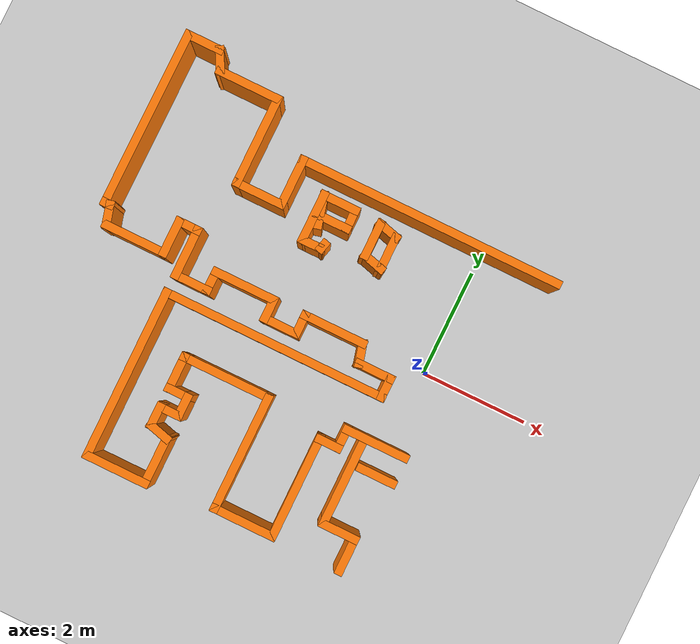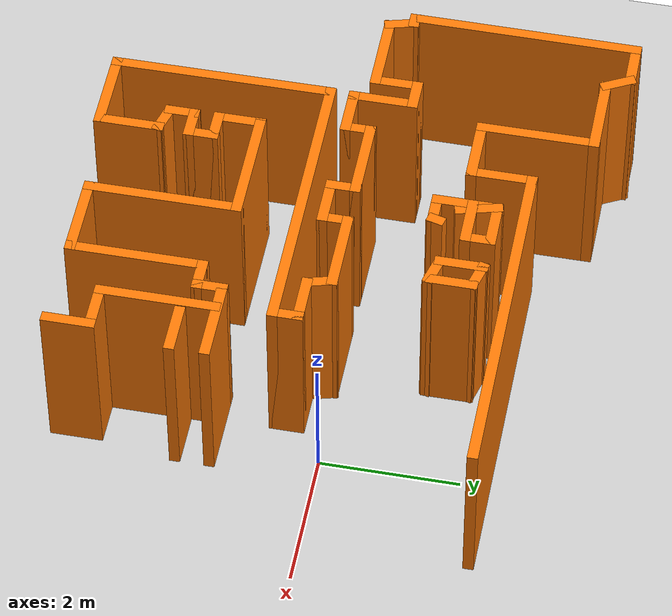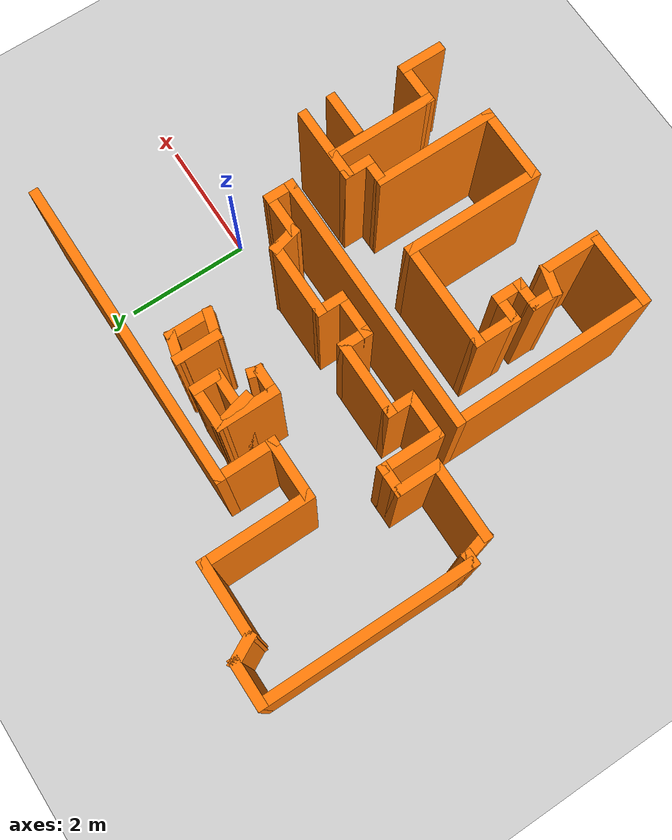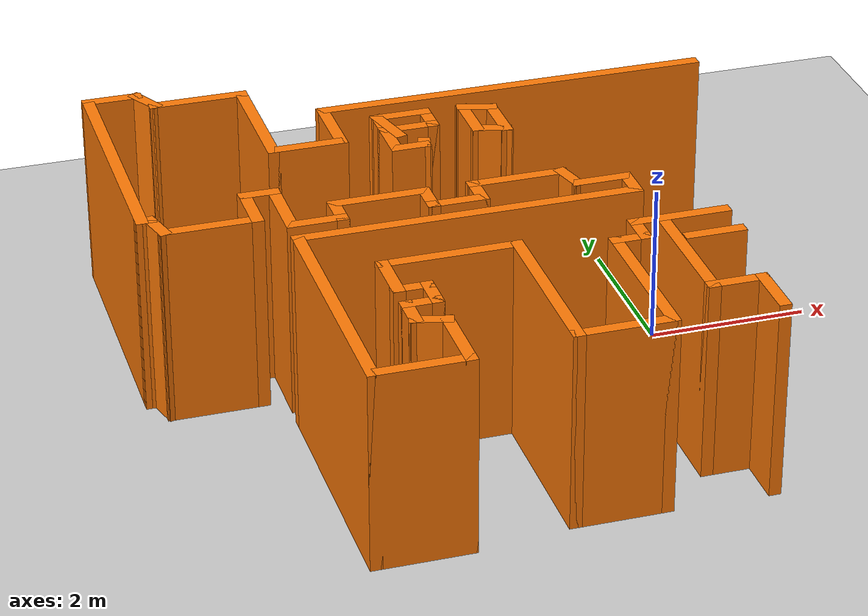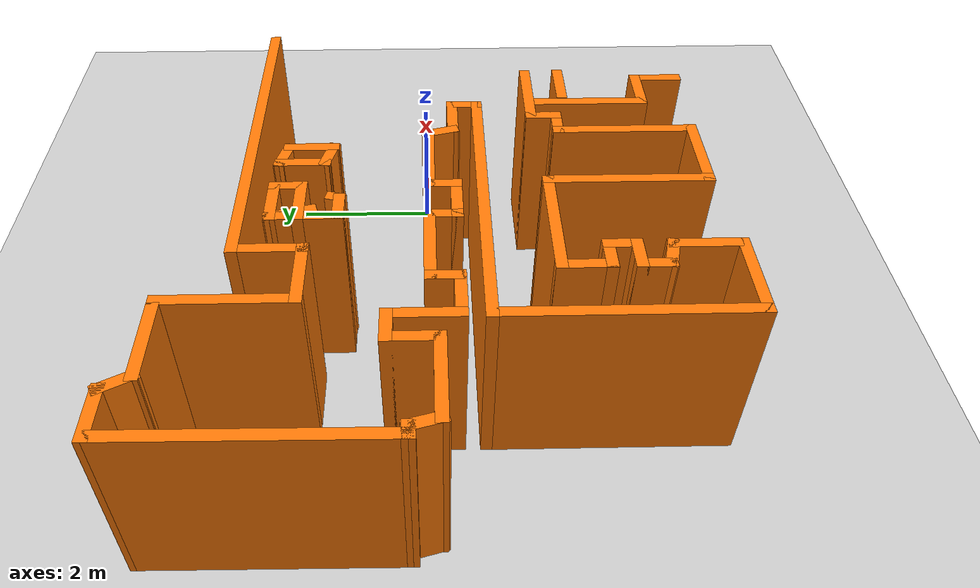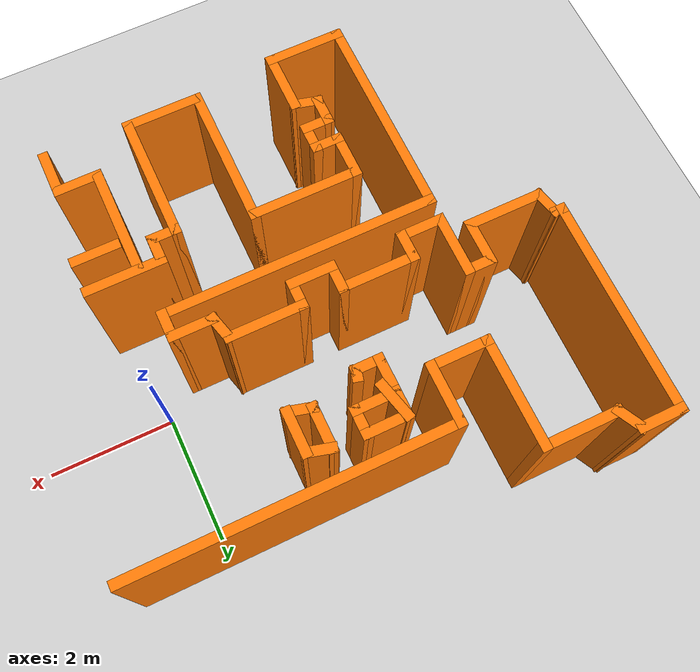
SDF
<sdf version="1.6">
 <world name="default">
  <model name="ground_plane">
   <static>1</static>
   <link name="link">
    <collision name="collision">
     <geometry><plane><normal>0 0 1</normal><size>100 100</size></plane></geometry>
     <surface>
      <contact><collide_bitmask>65535</collide_bitmask></contact>
      <friction><ode><mu>100</mu><mu2>50</mu2></ode></friction>
     </surface>
    </collision>
    <visual name="visual">
     <cast_shadows>0</cast_shadows>
     <geometry><plane><normal>0 0 1</normal><size>100 100</size></plane></geometry>
     <material>
      <script><uri>file://media/materials/scripts/gazebo.material</uri><name>Gazebo/Grey</name></script>
     </material>
    </visual>
   </link>
  </model>
  <model name="map_27">
   <pose>0.519139 -0.186386 0 0 -0 0</pose>
   <link name="Wall_124">
    <collision name="Wall_124_Collision">
     <geometry><box><size>5 0.15 2.5</size></box></geometry>
     <pose>0 0 1.25 0 -0 0</pose>
    </collision>
    <visual name="Wall_124_Visual">
     <pose>0 0 1.25 0 -0 0</pose>
     <geometry><box><size>5 0.15 2.5</size></box></geometry>
     <material>
      <script><uri>file://media/materials/scripts/gazebo.material</uri><name>Gazebo/Grey</name></script>
      <ambient>0.996078 0.47451 0.0196078 1</ambient>
     </material>
     <meta><layer>0</layer></meta>
    </visual>
    <pose>-1.62735 2.53379 0 0 -0 3.14159</pose>
   </link>
   <link name="Wall_125">
    <collision name="Wall_125_Collision">
     <geometry><box><size>1 0.15 2.5</size></box></geometry>
     <pose>0 0 1.25 0 -0 0</pose>
    </collision>
    <visual name="Wall_125_Visual">
     <pose>0 0 1.25 0 -0 0</pose>
     <geometry><box><size>1 0.15 2.5</size></box></geometry>
     <material>
      <script><uri>file://media/materials/scripts/gazebo.material</uri><name>Gazebo/Grey</name></script>
      <ambient>0.996078 0.47451 0.0196078 1</ambient>
     </material>
     <meta><layer>0</layer></meta>
    </visual>
    <pose>-4.05234 2.10879 0 0 -0 -1.5708</pose>
   </link>
   <link name="Wall_126">
    <collision name="Wall_126_Collision">
     <geometry><box><size>1 0.15 2.5</size></box></geometry>
     <pose>0 0 1.25 0 -0 0</pose>
    </collision>
    <visual name="Wall_126_Visual">
     <pose>0 0 1.25 0 -0 0</pose>
     <geometry><box><size>1 0.15 2.5</size></box></geometry>
     <material>
      <script><uri>file://media/materials/scripts/gazebo.material</uri><name>Gazebo/Grey</name></script>
      <ambient>0.996078 0.47451 0.0196078 1</ambient>
     </material>
     <meta><layer>0</layer></meta>
    </visual>
    <pose>-4.47734 1.68379 0 0 -0 3.14159</pose>
   </link>
   <link name="Wall_127">
    <collision name="Wall_127_Collision">
     <geometry><box><size>1.75 0.15 2.5</size></box></geometry>
     <pose>0 0 1.25 0 -0 0</pose>
    </collision>
    <visual name="Wall_127_Visual">
     <pose>0 0 1.25 0 -0 0</pose>
     <geometry><box><size>1.75 0.15 2.5</size></box></geometry>
     <material>
      <script><uri>file://media/materials/scripts/gazebo.material</uri><name>Gazebo/Grey</name></script>
      <ambient>0.996078 0.47451 0.0196078 1</ambient>
     </material>
     <meta><layer>0</layer></meta>
    </visual>
    <pose>-4.90235 2.48379 0 0 -0 1.5708</pose>
   </link>
   <link name="Wall_128">
    <collision name="Wall_128_Collision">
     <geometry><box><size>1.25 0.15 2.5</size></box></geometry>
     <pose>0 0 1.25 0 -0 0</pose>
    </collision>
    <visual name="Wall_128_Visual">
     <pose>0 0 1.25 0 -0 0</pose>
     <geometry><box><size>1.25 0.15 2.5</size></box></geometry>
     <material>
      <script><uri>file://media/materials/scripts/gazebo.material</uri><name>Gazebo/Grey</name></script>
      <ambient>0.996078 0.47451 0.0196078 1</ambient>
     </material>
     <meta><layer>0</layer></meta>
    </visual>
    <pose>-5.45235 3.28379 0 0 -0 3.14159</pose>
   </link>
   <link name="Wall_132">
    <collision name="Wall_132_Collision">
     <geometry><box><size>0.75 0.15 2.5</size></box></geometry>
     <pose>0 0 1.25 0 -0 0</pose>
    </collision>
    <visual name="Wall_132_Visual">
     <pose>0 0 1.25 0 -0 0</pose>
     <geometry><box><size>0.75 0.15 2.5</size></box></geometry>
     <material>
      <script><uri>file://media/materials/scripts/gazebo.material</uri><name>Gazebo/Grey</name></script>
      <ambient>0.996078 0.47451 0.0196078 1</ambient>
     </material>
     <meta><layer>0</layer></meta>
    </visual>
    <pose>-6.47147 3.6078 0 0 -0 0</pose>
   </link>
   <link name="Wall_133">
    <collision name="Wall_133_Collision">
     <geometry><box><size>0.515501 0.15 2.5</size></box></geometry>
     <pose>0 0 1.25 0 -0 0</pose>
    </collision>
    <visual name="Wall_133_Visual">
     <pose>0 0 1.25 0 -0 0</pose>
     <geometry><box><size>0.515501 0.15 2.5</size></box></geometry>
     <material>
      <script><uri>file://media/materials/scripts/gazebo.material</uri><name>Gazebo/Grey</name></script>
      <ambient>0.996078 0.47451 0.0196078 1</ambient>
     </material>
     <meta><layer>0</layer></meta>
    </visual>
    <pose>-6.08691 3.4458 0 0 -0 -1.08972</pose>
   </link>
   <link name="Wall_148">
    <collision name="Wall_148_Collision">
     <geometry><box><size>1 0.15 2.5</size></box></geometry>
     <pose>0 0 1.25 0 -0 0</pose>
    </collision>
    <visual name="Wall_148_Visual">
     <pose>0 0 1.25 0 -0 0</pose>
     <geometry><box><size>1 0.15 2.5</size></box></geometry>
     <material>
      <script><uri>file://media/materials/scripts/gazebo.material</uri><name>Gazebo/Grey</name></script>
      <ambient>0.996078 0.47451 0.0196078 1</ambient>
     </material>
     <meta><layer>0</layer></meta>
    </visual>
    <pose>-3.4638 1.72558 0 0 -0 -1.5708</pose>
   </link>
   <link name="Wall_149">
    <collision name="Wall_149_Collision">
     <geometry><box><size>0.5 0.15 2.5</size></box></geometry>
     <pose>0 0 1.25 0 -0 0</pose>
    </collision>
    <visual name="Wall_149_Visual">
     <pose>0 0 1.25 0 -0 0</pose>
     <geometry><box><size>0.5 0.15 2.5</size></box></geometry>
     <material>
      <script><uri>file://media/materials/scripts/gazebo.material</uri><name>Gazebo/Grey</name></script>
      <ambient>0.996078 0.47451 0.0196078 1</ambient>
     </material>
     <meta><layer>0</layer></meta>
    </visual>
    <pose>-3.2888 1.30058 0 0 -0 0</pose>
   </link>
   <link name="Wall_15">
    <collision name="Wall_15_Collision">
     <geometry><box><size>3.36574 0.15 2.5</size></box></geometry>
     <pose>0 0 1.25 0 -0 0</pose>
    </collision>
    <visual name="Wall_15_Visual">
     <pose>0 0 1.25 0 -0 0</pose>
     <geometry><box><size>3.36574 0.15 2.5</size></box></geometry>
     <material>
      <script><uri>file://media/materials/scripts/gazebo.material</uri><name>Gazebo/Grey</name></script>
      <ambient>0.996078 0.47451 0.0196078 1</ambient>
     </material>
     <meta><layer>0</layer></meta>
    </visual>
    <pose>-6.78304 1.99998 0 0 -0 -1.57799</pose>
   </link>
   <link name="Wall_150">
    <collision name="Wall_150_Collision">
     <geometry><box><size>0.25 0.15 2.5</size></box></geometry>
     <pose>0 0 1.25 0 -0 0</pose>
    </collision>
    <visual name="Wall_150_Visual">
     <pose>0 0 1.25 0 -0 0</pose>
     <geometry><box><size>0.25 0.15 2.5</size></box></geometry>
     <material>
      <script><uri>file://media/materials/scripts/gazebo.material</uri><name>Gazebo/Grey</name></script>
      <ambient>0.996078 0.47451 0.0196078 1</ambient>
     </material>
     <meta><layer>0</layer></meta>
    </visual>
    <pose>-3.10086 1.34887 0 0 -0 1.309</pose>
   </link>
   <link name="Wall_152">
    <collision name="Wall_152_Collision">
     <geometry><box><size>0.671958 0.15 2.5</size></box></geometry>
     <pose>0 0 1.25 0 -0 0</pose>
    </collision>
    <visual name="Wall_152_Visual">
     <pose>0 0 1.25 0 -0 0</pose>
     <geometry><box><size>0.671958 0.15 2.5</size></box></geometry>
     <material>
      <script><uri>file://media/materials/scripts/gazebo.material</uri><name>Gazebo/Grey</name></script>
      <ambient>0.996078 0.47451 0.0196078 1</ambient>
     </material>
     <meta><layer>0</layer></meta>
    </visual>
    <pose>-3.3996 1.89762 0 0 -0 1.81933</pose>
   </link>
   <link name="Wall_154">
    <collision name="Wall_154_Collision">
     <geometry><box><size>0.75 0.15 2.5</size></box></geometry>
     <pose>0 0 1.25 0 -0 0</pose>
    </collision>
    <visual name="Wall_154_Visual">
     <pose>0 0 1.25 0 -0 0</pose>
     <geometry><box><size>0.75 0.15 2.5</size></box></geometry>
     <material>
      <script><uri>file://media/materials/scripts/gazebo.material</uri><name>Gazebo/Grey</name></script>
      <ambient>0.996078 0.47451 0.0196078 1</ambient>
     </material>
     <meta><layer>0</layer></meta>
    </visual>
    <pose>-3.1638 2.15058 0 0 -0 0</pose>
   </link>
   <link name="Wall_155">
    <collision name="Wall_155_Collision">
     <geometry><box><size>0.5 0.15 2.5</size></box></geometry>
     <pose>0 0 1.25 0 -0 0</pose>
    </collision>
    <visual name="Wall_155_Visual">
     <pose>0 0 1.25 0 -0 0</pose>
     <geometry><box><size>0.5 0.15 2.5</size></box></geometry>
     <material>
      <script><uri>file://media/materials/scripts/gazebo.material</uri><name>Gazebo/Grey</name></script>
      <ambient>0.996078 0.47451 0.0196078 1</ambient>
     </material>
     <meta><layer>0</layer></meta>
    </visual>
    <pose>-2.8638 1.97558 0 0 -0 -1.5708</pose>
   </link>
   <link name="Wall_156">
    <collision name="Wall_156_Collision">
     <geometry><box><size>0.75 0.15 2.5</size></box></geometry>
     <pose>0 0 1.25 0 -0 0</pose>
    </collision>
    <visual name="Wall_156_Visual">
     <pose>0 0 1.25 0 -0 0</pose>
     <geometry><box><size>0.75 0.15 2.5</size></box></geometry>
     <material>
      <script><uri>file://media/materials/scripts/gazebo.material</uri><name>Gazebo/Grey</name></script>
      <ambient>0.996078 0.47451 0.0196078 1</ambient>
     </material>
     <meta><layer>0</layer></meta>
    </visual>
    <pose>-3.1638 1.80058 0 0 -0 3.14159</pose>
   </link>
   <link name="Wall_158">
    <collision name="Wall_158_Collision">
     <geometry><box><size>0.75 0.15 2.5</size></box></geometry>
     <pose>0 0 1.25 0 -0 0</pose>
    </collision>
    <visual name="Wall_158_Visual">
     <pose>0 0 1.25 0 -0 0</pose>
     <geometry><box><size>0.75 0.15 2.5</size></box></geometry>
     <material>
      <script><uri>file://media/materials/scripts/gazebo.material</uri><name>Gazebo/Grey</name></script>
      <ambient>0.996078 0.47451 0.0196078 1</ambient>
     </material>
     <meta><layer>0</layer></meta>
    </visual>
    <pose>-2.37666 1.82745 0 0 -0 -1.5708</pose>
   </link>
   <link name="Wall_159">
    <collision name="Wall_159_Collision">
     <geometry><box><size>0.5 0.15 2.5</size></box></geometry>
     <pose>0 0 1.25 0 -0 0</pose>
    </collision>
    <visual name="Wall_159_Visual">
     <pose>0 0 1.25 0 -0 0</pose>
     <geometry><box><size>0.5 0.15 2.5</size></box></geometry>
     <material>
      <script><uri>file://media/materials/scripts/gazebo.material</uri><name>Gazebo/Grey</name></script>
      <ambient>0.996078 0.47451 0.0196078 1</ambient>
     </material>
     <meta><layer>0</layer></meta>
    </visual>
    <pose>-2.20762 1.48215 0 0 -0 -0.261799</pose>
   </link>
   <link name="Wall_16">
    <collision name="Wall_16_Collision">
     <geometry><box><size>0.25 0.15 2.5</size></box></geometry>
     <pose>0 0 1.25 0 -0 0</pose>
    </collision>
    <visual name="Wall_16_Visual">
     <pose>0 0 1.25 0 -0 0</pose>
     <geometry><box><size>0.25 0.15 2.5</size></box></geometry>
     <material>
      <script><uri>file://media/materials/scripts/gazebo.material</uri><name>Gazebo/Grey</name></script>
      <ambient>0.996078 0.47451 0.0196078 1</ambient>
     </material>
     <meta><layer>0</layer></meta>
    </visual>
    <pose>-6.7446 0.392152 0 0 -0 0</pose>
   </link>
   <link name="Wall_160">
    <collision name="Wall_160_Collision">
     <geometry><box><size>0.75 0.15 2.5</size></box></geometry>
     <pose>0 0 1.25 0 -0 0</pose>
    </collision>
    <visual name="Wall_160_Visual">
     <pose>0 0 1.25 0 -0 0</pose>
     <geometry><box><size>0.75 0.15 2.5</size></box></geometry>
     <material>
      <script><uri>file://media/materials/scripts/gazebo.material</uri><name>Gazebo/Grey</name></script>
      <ambient>0.996078 0.47451 0.0196078 1</ambient>
     </material>
     <meta><layer>0</layer></meta>
    </visual>
    <pose>-2.03858 1.73686 0 0 -0 1.5708</pose>
   </link>
   <link name="Wall_161">
    <collision name="Wall_161_Collision">
     <geometry><box><size>0.5 0.15 2.5</size></box></geometry>
     <pose>0 0 1.25 0 -0 0</pose>
    </collision>
    <visual name="Wall_161_Visual">
     <pose>0 0 1.25 0 -0 0</pose>
     <geometry><box><size>0.5 0.15 2.5</size></box></geometry>
     <material>
      <script><uri>file://media/materials/scripts/gazebo.material</uri><name>Gazebo/Grey</name></script>
      <ambient>0.996078 0.47451 0.0196078 1</ambient>
     </material>
     <meta><layer>0</layer></meta>
    </visual>
    <pose>-2.20762 2.08215 0 0 -0 2.87979</pose>
   </link>
   <link name="Wall_164">
    <collision name="Wall_164_Collision">
     <geometry><box><size>0.75 0.15 2.5</size></box></geometry>
     <pose>0 0 1.25 0 -0 0</pose>
    </collision>
    <visual name="Wall_164_Visual">
     <pose>0 0 1.25 0 -0 0</pose>
     <geometry><box><size>0.75 0.15 2.5</size></box></geometry>
     <material>
      <script><uri>file://media/materials/scripts/gazebo.material</uri><name>Gazebo/Grey</name></script>
      <ambient>0.996078 0.47451 0.0196078 1</ambient>
     </material>
     <meta><layer>0</layer></meta>
    </visual>
    <pose>-0.550039 -1.78163 0 0 -0 0</pose>
   </link>
   <link name="Wall_17">
    <collision name="Wall_17_Collision">
     <geometry><box><size>0.5 0.15 2.5</size></box></geometry>
     <pose>0 0 1.25 0 -0 0</pose>
    </collision>
    <visual name="Wall_17_Visual">
     <pose>0 0 1.25 0 -0 0</pose>
     <geometry><box><size>0.5 0.15 2.5</size></box></geometry>
     <material>
      <script><uri>file://media/materials/scripts/gazebo.material</uri><name>Gazebo/Grey</name></script>
      <ambient>0.996078 0.47451 0.0196078 1</ambient>
     </material>
     <meta><layer>0</layer></meta>
    </visual>
    <pose>-6.64931 0.223115 0 0 -0 -1.309</pose>
   </link>
   <link name="Wall_18">
    <collision name="Wall_18_Collision">
     <geometry><box><size>1.25 0.15 2.5</size></box></geometry>
     <pose>0 0 1.25 0 -0 0</pose>
    </collision>
    <visual name="Wall_18_Visual">
     <pose>0 0 1.25 0 -0 0</pose>
     <geometry><box><size>1.25 0.15 2.5</size></box></geometry>
     <material>
      <script><uri>file://media/materials/scripts/gazebo.material</uri><name>Gazebo/Grey</name></script>
      <ambient>0.996078 0.47451 0.0196078 1</ambient>
     </material>
     <meta><layer>0</layer></meta>
    </visual>
    <pose>-6.05402 0.054078 0 0 -0 0</pose>
   </link>
   <link name="Wall_19">
    <collision name="Wall_19_Collision">
     <geometry><box><size>0.75 0.15 2.5</size></box></geometry>
     <pose>0 0 1.25 0 -0 0</pose>
    </collision>
    <visual name="Wall_19_Visual">
     <pose>0 0 1.25 0 -0 0</pose>
     <geometry><box><size>0.75 0.15 2.5</size></box></geometry>
     <material>
      <script><uri>file://media/materials/scripts/gazebo.material</uri><name>Gazebo/Grey</name></script>
      <ambient>0.996078 0.47451 0.0196078 1</ambient>
     </material>
     <meta><layer>0</layer></meta>
    </visual>
    <pose>-5.50402 0.354078 0 0 -0 1.5708</pose>
   </link>
   <link name="Wall_20">
    <collision name="Wall_20_Collision">
     <geometry><box><size>0.5 0.15 2.5</size></box></geometry>
     <pose>0 0 1.25 0 -0 0</pose>
    </collision>
    <visual name="Wall_20_Visual">
     <pose>0 0 1.25 0 -0 0</pose>
     <geometry><box><size>0.5 0.15 2.5</size></box></geometry>
     <material>
      <script><uri>file://media/materials/scripts/gazebo.material</uri><name>Gazebo/Grey</name></script>
      <ambient>0.996078 0.47451 0.0196078 1</ambient>
     </material>
     <meta><layer>0</layer></meta>
    </visual>
    <pose>-5.32902 0.654078 0 0 -0 0</pose>
   </link>
   <link name="Wall_21">
    <collision name="Wall_21_Collision">
     <geometry><box><size>1 0.15 2.5</size></box></geometry>
     <pose>0 0 1.25 0 -0 0</pose>
    </collision>
    <visual name="Wall_21_Visual">
     <pose>0 0 1.25 0 -0 0</pose>
     <geometry><box><size>1 0.15 2.5</size></box></geometry>
     <material>
      <script><uri>file://media/materials/scripts/gazebo.material</uri><name>Gazebo/Grey</name></script>
      <ambient>0.996078 0.47451 0.0196078 1</ambient>
     </material>
     <meta><layer>0</layer></meta>
    </visual>
    <pose>-5.15402 0.229078 0 0 -0 -1.5708</pose>
   </link>
   <link name="Wall_22">
    <collision name="Wall_22_Collision">
     <geometry><box><size>0.75 0.15 2.5</size></box></geometry>
     <pose>0 0 1.25 0 -0 0</pose>
    </collision>
    <visual name="Wall_22_Visual">
     <pose>0 0 1.25 0 -0 0</pose>
     <geometry><box><size>0.75 0.15 2.5</size></box></geometry>
     <material>
      <script><uri>file://media/materials/scripts/gazebo.material</uri><name>Gazebo/Grey</name></script>
      <ambient>0.996078 0.47451 0.0196078 1</ambient>
     </material>
     <meta><layer>0</layer></meta>
    </visual>
    <pose>-4.85402 -0.195922 0 0 -0 0</pose>
   </link>
   <link name="Wall_23">
    <collision name="Wall_23_Collision">
     <geometry><box><size>0.5 0.15 2.5</size></box></geometry>
     <pose>0 0 1.25 0 -0 0</pose>
    </collision>
    <visual name="Wall_23_Visual">
     <pose>0 0 1.25 0 -0 0</pose>
     <geometry><box><size>0.5 0.15 2.5</size></box></geometry>
     <material>
      <script><uri>file://media/materials/scripts/gazebo.material</uri><name>Gazebo/Grey</name></script>
      <ambient>0.996078 0.47451 0.0196078 1</ambient>
     </material>
     <meta><layer>0</layer></meta>
    </visual>
    <pose>-4.55402 -0.020922 0 0 -0 1.5708</pose>
   </link>
   <link name="Wall_24">
    <collision name="Wall_24_Collision">
     <geometry><box><size>1.25 0.15 2.5</size></box></geometry>
     <pose>0 0 1.25 0 -0 0</pose>
    </collision>
    <visual name="Wall_24_Visual">
     <pose>0 0 1.25 0 -0 0</pose>
     <geometry><box><size>1.25 0.15 2.5</size></box></geometry>
     <material>
      <script><uri>file://media/materials/scripts/gazebo.material</uri><name>Gazebo/Grey</name></script>
      <ambient>0.996078 0.47451 0.0196078 1</ambient>
     </material>
     <meta><layer>0</layer></meta>
    </visual>
    <pose>-4.00402 0.154078 0 0 -0 0</pose>
   </link>
   <link name="Wall_25">
    <collision name="Wall_25_Collision">
     <geometry><box><size>0.5 0.15 2.5</size></box></geometry>
     <pose>0 0 1.25 0 -0 0</pose>
    </collision>
    <visual name="Wall_25_Visual">
     <pose>0 0 1.25 0 -0 0</pose>
     <geometry><box><size>0.5 0.15 2.5</size></box></geometry>
     <material>
      <script><uri>file://media/materials/scripts/gazebo.material</uri><name>Gazebo/Grey</name></script>
      <ambient>0.996078 0.47451 0.0196078 1</ambient>
     </material>
     <meta><layer>0</layer></meta>
    </visual>
    <pose>-3.45402 -0.020922 0 0 -0 -1.5708</pose>
   </link>
   <link name="Wall_26">
    <collision name="Wall_26_Collision">
     <geometry><box><size>0.75 0.15 2.5</size></box></geometry>
     <pose>0 0 1.25 0 -0 0</pose>
    </collision>
    <visual name="Wall_26_Visual">
     <pose>0 0 1.25 0 -0 0</pose>
     <geometry><box><size>0.75 0.15 2.5</size></box></geometry>
     <material>
      <script><uri>file://media/materials/scripts/gazebo.material</uri><name>Gazebo/Grey</name></script>
      <ambient>0.996078 0.47451 0.0196078 1</ambient>
     </material>
     <meta><layer>0</layer></meta>
    </visual>
    <pose>-3.15402 -0.195922 0 0 -0 0</pose>
   </link>
   <link name="Wall_27">
    <collision name="Wall_27_Collision">
     <geometry><box><size>0.5 0.15 2.5</size></box></geometry>
     <pose>0 0 1.25 0 -0 0</pose>
    </collision>
    <visual name="Wall_27_Visual">
     <pose>0 0 1.25 0 -0 0</pose>
     <geometry><box><size>0.5 0.15 2.5</size></box></geometry>
     <material>
      <script><uri>file://media/materials/scripts/gazebo.material</uri><name>Gazebo/Grey</name></script>
      <ambient>0.996078 0.47451 0.0196078 1</ambient>
     </material>
     <meta><layer>0</layer></meta>
    </visual>
    <pose>-2.85402 -0.020922 0 0 -0 1.5708</pose>
   </link>
   <link name="Wall_28">
    <collision name="Wall_28_Collision">
     <geometry><box><size>1.25 0.15 2.5</size></box></geometry>
     <pose>0 0 1.25 0 -0 0</pose>
    </collision>
    <visual name="Wall_28_Visual">
     <pose>0 0 1.25 0 -0 0</pose>
     <geometry><box><size>1.25 0.15 2.5</size></box></geometry>
     <material>
      <script><uri>file://media/materials/scripts/gazebo.material</uri><name>Gazebo/Grey</name></script>
      <ambient>0.996078 0.47451 0.0196078 1</ambient>
     </material>
     <meta><layer>0</layer></meta>
    </visual>
    <pose>-2.30402 0.154078 0 0 -0 0</pose>
   </link>
   <link name="Wall_29">
    <collision name="Wall_29_Collision">
     <geometry><box><size>0.5 0.15 2.5</size></box></geometry>
     <pose>0 0 1.25 0 -0 0</pose>
    </collision>
    <visual name="Wall_29_Visual">
     <pose>0 0 1.25 0 -0 0</pose>
     <geometry><box><size>0.5 0.15 2.5</size></box></geometry>
     <material>
      <script><uri>file://media/materials/scripts/gazebo.material</uri><name>Gazebo/Grey</name></script>
      <ambient>0.996078 0.47451 0.0196078 1</ambient>
     </material>
     <meta><layer>0</layer></meta>
    </visual>
    <pose>-1.70873 -0.014959 0 0 -0 -1.309</pose>
   </link>
   <link name="Wall_30">
    <collision name="Wall_30_Collision">
     <geometry><box><size>0.75 0.15 2.5</size></box></geometry>
     <pose>0 0 1.25 0 -0 0</pose>
    </collision>
    <visual name="Wall_30_Visual">
     <pose>0 0 1.25 0 -0 0</pose>
     <geometry><box><size>0.75 0.15 2.5</size></box></geometry>
     <material>
      <script><uri>file://media/materials/scripts/gazebo.material</uri><name>Gazebo/Grey</name></script>
      <ambient>0.996078 0.47451 0.0196078 1</ambient>
     </material>
     <meta><layer>0</layer></meta>
    </visual>
    <pose>-1.36343 -0.183996 0 0 -0 0</pose>
   </link>
   <link name="Wall_31">
    <collision name="Wall_31_Collision">
     <geometry><box><size>0.5 0.15 2.5</size></box></geometry>
     <pose>0 0 1.25 0 -0 0</pose>
    </collision>
    <visual name="Wall_31_Visual">
     <pose>0 0 1.25 0 -0 0</pose>
     <geometry><box><size>0.5 0.15 2.5</size></box></geometry>
     <material>
      <script><uri>file://media/materials/scripts/gazebo.material</uri><name>Gazebo/Grey</name></script>
      <ambient>0.996078 0.47451 0.0196078 1</ambient>
     </material>
     <meta><layer>0</layer></meta>
    </visual>
    <pose>-1.06343 -0.358996 0 0 -0 -1.5708</pose>
   </link>
   <link name="Wall_32">
    <collision name="Wall_32_Collision">
     <geometry><box><size>4.25 0.15 2.5</size></box></geometry>
     <pose>0 0 1.25 0 -0 0</pose>
    </collision>
    <visual name="Wall_32_Visual">
     <pose>0 0 1.25 0 -0 0</pose>
     <geometry><box><size>4.25 0.15 2.5</size></box></geometry>
     <material>
      <script><uri>file://media/materials/scripts/gazebo.material</uri><name>Gazebo/Grey</name></script>
      <ambient>0.996078 0.47451 0.0196078 1</ambient>
     </material>
     <meta><layer>0</layer></meta>
    </visual>
    <pose>-3.11343 -0.533996 0 0 -0 3.14159</pose>
   </link>
   <link name="Wall_33">
    <collision name="Wall_33_Collision">
     <geometry><box><size>3.25 0.15 2.5</size></box></geometry>
     <pose>0 0 1.25 0 -0 0</pose>
    </collision>
    <visual name="Wall_33_Visual">
     <pose>0 0 1.25 0 -0 0</pose>
     <geometry><box><size>3.25 0.15 2.5</size></box></geometry>
     <material>
      <script><uri>file://media/materials/scripts/gazebo.material</uri><name>Gazebo/Grey</name></script>
      <ambient>0.996078 0.47451 0.0196078 1</ambient>
     </material>
     <meta><layer>0</layer></meta>
    </visual>
    <pose>-5.16343 -2.084 0 0 -0 -1.5708</pose>
   </link>
   <link name="Wall_34">
    <collision name="Wall_34_Collision">
     <geometry><box><size>1.25 0.15 2.5</size></box></geometry>
     <pose>0 0 1.25 0 -0 0</pose>
    </collision>
    <visual name="Wall_34_Visual">
     <pose>0 0 1.25 0 -0 0</pose>
     <geometry><box><size>1.25 0.15 2.5</size></box></geometry>
     <material>
      <script><uri>file://media/materials/scripts/gazebo.material</uri><name>Gazebo/Grey</name></script>
      <ambient>0.996078 0.47451 0.0196078 1</ambient>
     </material>
     <meta><layer>0</layer></meta>
    </visual>
    <pose>-4.61343 -3.634 0 0 -0 0</pose>
   </link>
   <link name="Wall_35">
    <collision name="Wall_35_Collision">
     <geometry><box><size>1 0.15 2.5</size></box></geometry>
     <pose>0 0 1.25 0 -0 0</pose>
    </collision>
    <visual name="Wall_35_Visual">
     <pose>0 0 1.25 0 -0 0</pose>
     <geometry><box><size>1 0.15 2.5</size></box></geometry>
     <material>
      <script><uri>file://media/materials/scripts/gazebo.material</uri><name>Gazebo/Grey</name></script>
      <ambient>0.996078 0.47451 0.0196078 1</ambient>
     </material>
     <meta><layer>0</layer></meta>
    </visual>
    <pose>-4.06343 -3.209 0 0 -0 1.5708</pose>
   </link>
   <link name="Wall_36">
    <collision name="Wall_36_Collision">
     <geometry><box><size>0.5 0.15 2.5</size></box></geometry>
     <pose>0 0 1.25 0 -0 0</pose>
    </collision>
    <visual name="Wall_36_Visual">
     <pose>0 0 1.25 0 -0 0</pose>
     <geometry><box><size>0.5 0.15 2.5</size></box></geometry>
     <material>
      <script><uri>file://media/materials/scripts/gazebo.material</uri><name>Gazebo/Grey</name></script>
      <ambient>0.996078 0.47451 0.0196078 1</ambient>
     </material>
     <meta><layer>0</layer></meta>
    </visual>
    <pose>-4.23247 -2.7387 0 0 -0 2.87979</pose>
   </link>
   <link name="Wall_37">
    <collision name="Wall_37_Collision">
     <geometry><box><size>0.5 0.15 2.5</size></box></geometry>
     <pose>0 0 1.25 0 -0 0</pose>
    </collision>
    <visual name="Wall_37_Visual">
     <pose>0 0 1.25 0 -0 0</pose>
     <geometry><box><size>0.5 0.15 2.5</size></box></geometry>
     <material>
      <script><uri>file://media/materials/scripts/gazebo.material</uri><name>Gazebo/Grey</name></script>
      <ambient>0.996078 0.47451 0.0196078 1</ambient>
     </material>
     <meta><layer>0</layer></meta>
    </visual>
    <pose>-4.40151 -2.51841 0 0 -0 1.5708</pose>
   </link>
   <link name="Wall_41">
    <collision name="Wall_41_Collision">
     <geometry><box><size>0.5 0.15 2.5</size></box></geometry>
     <pose>0 0 1.25 0 -0 0</pose>
    </collision>
    <visual name="Wall_41_Visual">
     <pose>0 0 1.25 0 -0 0</pose>
     <geometry><box><size>0.5 0.15 2.5</size></box></geometry>
     <material>
      <script><uri>file://media/materials/scripts/gazebo.material</uri><name>Gazebo/Grey</name></script>
      <ambient>0.996078 0.47451 0.0196078 1</ambient>
     </material>
     <meta><layer>0</layer></meta>
    </visual>
    <pose>-4.22651 -2.34341 0 0 -0 0</pose>
   </link>
   <link name="Wall_42">
    <collision name="Wall_42_Collision">
     <geometry><box><size>0.5 0.15 2.5</size></box></geometry>
     <pose>0 0 1.25 0 -0 0</pose>
    </collision>
    <visual name="Wall_42_Visual">
     <pose>0 0 1.25 0 -0 0</pose>
     <geometry><box><size>0.5 0.15 2.5</size></box></geometry>
     <material>
      <script><uri>file://media/materials/scripts/gazebo.material</uri><name>Gazebo/Grey</name></script>
      <ambient>0.996078 0.47451 0.0196078 1</ambient>
     </material>
     <meta><layer>0</layer></meta>
    </visual>
    <pose>-4.05151 -2.16841 0 0 -0 1.5708</pose>
   </link>
   <link name="Wall_43">
    <collision name="Wall_43_Collision">
     <geometry><box><size>0.5 0.15 2.5</size></box></geometry>
     <pose>0 0 1.25 0 -0 0</pose>
    </collision>
    <visual name="Wall_43_Visual">
     <pose>0 0 1.25 0 -0 0</pose>
     <geometry><box><size>0.5 0.15 2.5</size></box></geometry>
     <material>
      <script><uri>file://media/materials/scripts/gazebo.material</uri><name>Gazebo/Grey</name></script>
      <ambient>0.996078 0.47451 0.0196078 1</ambient>
     </material>
     <meta><layer>0</layer></meta>
    </visual>
    <pose>-4.22651 -1.99341 0 0 -0 3.14159</pose>
   </link>
   <link name="Wall_46">
    <collision name="Wall_46_Collision">
     <geometry><box><size>0.75 0.15 2.5</size></box></geometry>
     <pose>0 0 1.25 0 -0 0</pose>
    </collision>
    <visual name="Wall_46_Visual">
     <pose>0 0 1.25 0 -0 0</pose>
     <geometry><box><size>0.75 0.15 2.5</size></box></geometry>
     <material>
      <script><uri>file://media/materials/scripts/gazebo.material</uri><name>Gazebo/Grey</name></script>
      <ambient>0.996078 0.47451 0.0196078 1</ambient>
     </material>
     <meta><layer>0</layer></meta>
    </visual>
    <pose>-4.40151 -1.69341 0 0 -0 1.5708</pose>
   </link>
   <link name="Wall_47">
    <collision name="Wall_47_Collision">
     <geometry><box><size>1.75 0.15 2.5</size></box></geometry>
     <pose>0 0 1.25 0 -0 0</pose>
    </collision>
    <visual name="Wall_47_Visual">
     <pose>0 0 1.25 0 -0 0</pose>
     <geometry><box><size>1.75 0.15 2.5</size></box></geometry>
     <material>
      <script><uri>file://media/materials/scripts/gazebo.material</uri><name>Gazebo/Grey</name></script>
      <ambient>0.996078 0.47451 0.0196078 1</ambient>
     </material>
     <meta><layer>0</layer></meta>
    </visual>
    <pose>-3.60151 -1.39341 0 0 -0 0</pose>
   </link>
   <link name="Wall_48">
    <collision name="Wall_48_Collision">
     <geometry><box><size>2.25 0.15 2.5</size></box></geometry>
     <pose>0 0 1.25 0 -0 0</pose>
    </collision>
    <visual name="Wall_48_Visual">
     <pose>0 0 1.25 0 -0 0</pose>
     <geometry><box><size>2.25 0.15 2.5</size></box></geometry>
     <material>
      <script><uri>file://media/materials/scripts/gazebo.material</uri><name>Gazebo/Grey</name></script>
      <ambient>0.996078 0.47451 0.0196078 1</ambient>
     </material>
     <meta><layer>0</layer></meta>
    </visual>
    <pose>-2.80151 -2.44341 0 0 -0 -1.5708</pose>
   </link>
   <link name="Wall_51">
    <collision name="Wall_51_Collision">
     <geometry><box><size>1.25 0.15 2.5</size></box></geometry>
     <pose>0 0 1.25 0 -0 0</pose>
    </collision>
    <visual name="Wall_51_Visual">
     <pose>0 0 1.25 0 -0 0</pose>
     <geometry><box><size>1.25 0.15 2.5</size></box></geometry>
     <material>
      <script><uri>file://media/materials/scripts/gazebo.material</uri><name>Gazebo/Grey</name></script>
      <ambient>0.996078 0.47451 0.0196078 1</ambient>
     </material>
     <meta><layer>0</layer></meta>
    </visual>
    <pose>-2.25151 -3.49341 0 0 -0 0</pose>
   </link>
   <link name="Wall_54">
    <collision name="Wall_54_Collision">
     <geometry><box><size>2 0.15 2.5</size></box></geometry>
     <pose>0 0 1.25 0 -0 0</pose>
    </collision>
    <visual name="Wall_54_Visual">
     <pose>0 0 1.25 0 -0 0</pose>
     <geometry><box><size>2 0.15 2.5</size></box></geometry>
     <material>
      <script><uri>file://media/materials/scripts/gazebo.material</uri><name>Gazebo/Grey</name></script>
      <ambient>0.996078 0.47451 0.0196078 1</ambient>
     </material>
     <meta><layer>0</layer></meta>
    </visual>
    <pose>-1.70151 -2.56841 0 0 -0 1.5708</pose>
   </link>
   <link name="Wall_70">
    <collision name="Wall_70_Collision">
     <geometry><box><size>0.5 0.15 2.5</size></box></geometry>
     <pose>0 0 1.25 0 -0 0</pose>
    </collision>
    <visual name="Wall_70_Visual">
     <pose>0 0 1.25 0 -0 0</pose>
     <geometry><box><size>0.5 0.15 2.5</size></box></geometry>
     <material>
      <script><uri>file://media/materials/scripts/gazebo.material</uri><name>Gazebo/Grey</name></script>
      <ambient>0.996078 0.47451 0.0196078 1</ambient>
     </material>
     <meta><layer>0</layer></meta>
    </visual>
    <pose>-1.52651 -1.64341 0 0 -0 0</pose>
   </link>
   <link name="Wall_71">
    <collision name="Wall_71_Collision">
     <geometry><box><size>0.5 0.15 2.5</size></box></geometry>
     <pose>0 0 1.25 0 -0 0</pose>
    </collision>
    <visual name="Wall_71_Visual">
     <pose>0 0 1.25 0 -0 0</pose>
     <geometry><box><size>0.5 0.15 2.5</size></box></geometry>
     <material>
      <script><uri>file://media/materials/scripts/gazebo.material</uri><name>Gazebo/Grey</name></script>
      <ambient>0.996078 0.47451 0.0196078 1</ambient>
     </material>
     <meta><layer>0</layer></meta>
    </visual>
    <pose>-1.35151 -1.46841 0 0 -0 1.5708</pose>
   </link>
   <link name="Wall_72">
    <collision name="Wall_72_Collision">
     <geometry><box><size>1.25 0.15 2.5</size></box></geometry>
     <pose>0 0 1.25 0 -0 0</pose>
    </collision>
    <visual name="Wall_72_Visual">
     <pose>0 0 1.25 0 -0 0</pose>
     <geometry><box><size>1.25 0.15 2.5</size></box></geometry>
     <material>
      <script><uri>file://media/materials/scripts/gazebo.material</uri><name>Gazebo/Grey</name></script>
      <ambient>0.996078 0.47451 0.0196078 1</ambient>
     </material>
     <meta><layer>0</layer></meta>
    </visual>
    <pose>-0.801506 -1.29341 0 0 -0 0</pose>
   </link>
   <link name="Wall_74">
    <collision name="Wall_74_Collision">
     <geometry><box><size>1.75 0.15 2.5</size></box></geometry>
     <pose>0 0 1.25 0 -0 0</pose>
    </collision>
    <visual name="Wall_74_Visual">
     <pose>0 0 1.25 0 -0 0</pose>
     <geometry><box><size>1.75 0.15 2.5</size></box></geometry>
     <material>
      <script><uri>file://media/materials/scripts/gazebo.material</uri><name>Gazebo/Grey</name></script>
      <ambient>0.996078 0.47451 0.0196078 1</ambient>
     </material>
     <meta><layer>0</layer></meta>
    </visual>
    <pose>-1.01195 -2.11902 0 0 -0 -1.5708</pose>
   </link>
   <link name="Wall_75">
    <collision name="Wall_75_Collision">
     <geometry><box><size>0.75 0.15 2.5</size></box></geometry>
     <pose>0 0 1.25 0 -0 0</pose>
    </collision>
    <visual name="Wall_75_Visual">
     <pose>0 0 1.25 0 -0 0</pose>
     <geometry><box><size>0.75 0.15 2.5</size></box></geometry>
     <material>
      <script><uri>file://media/materials/scripts/gazebo.material</uri><name>Gazebo/Grey</name></script>
      <ambient>0.996078 0.47451 0.0196078 1</ambient>
     </material>
     <meta><layer>0</layer></meta>
    </visual>
    <pose>-0.711953 -2.91901 0 0 -0 0</pose>
   </link>
   <link name="Wall_76">
    <collision name="Wall_76_Collision">
     <geometry><box><size>0.75 0.15 2.5</size></box></geometry>
     <pose>0 0 1.25 0 -0 0</pose>
    </collision>
    <visual name="Wall_76_Visual">
     <pose>0 0 1.25 0 -0 0</pose>
     <geometry><box><size>0.75 0.15 2.5</size></box></geometry>
     <material>
      <script><uri>file://media/materials/scripts/gazebo.material</uri><name>Gazebo/Grey</name></script>
      <ambient>0.996078 0.47451 0.0196078 1</ambient>
     </material>
     <meta><layer>0</layer></meta>
    </visual>
    <pose>-0.411953 -3.21902 0 0 -0 -1.5708</pose>
   </link>
   <static>1</static>
  </model>
 </world>
</sdf>
